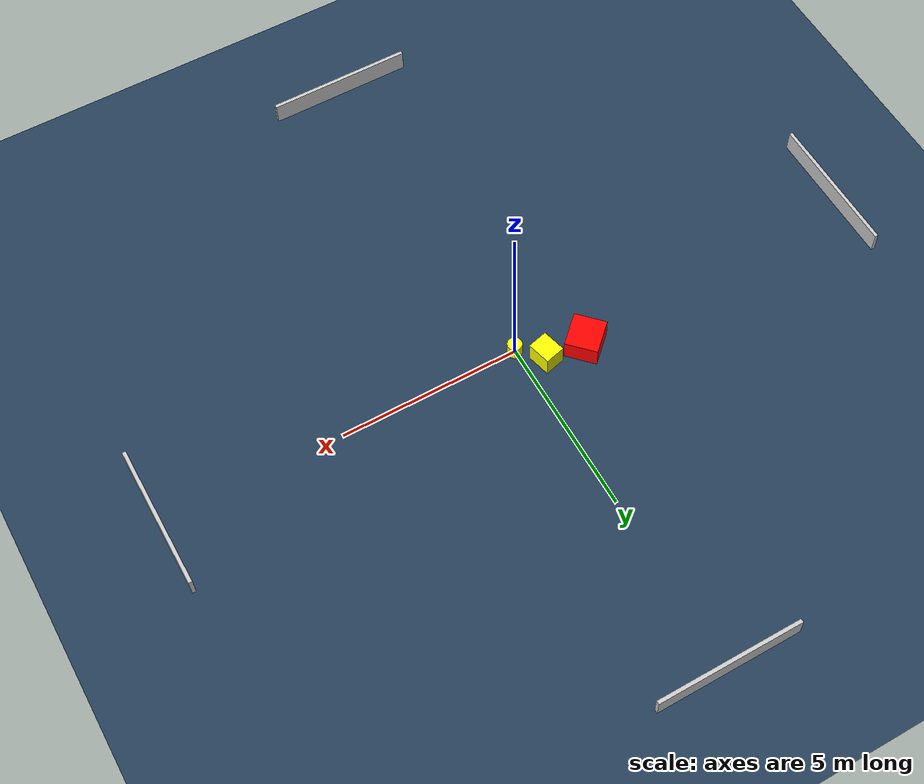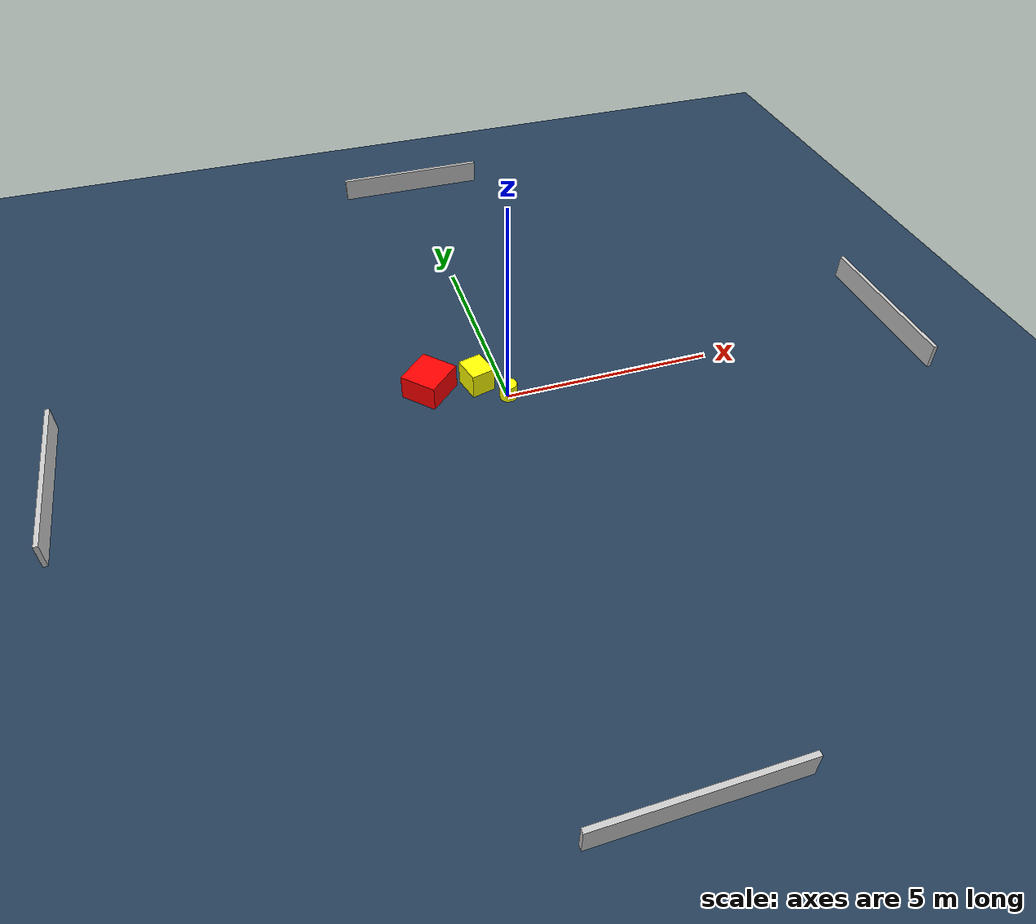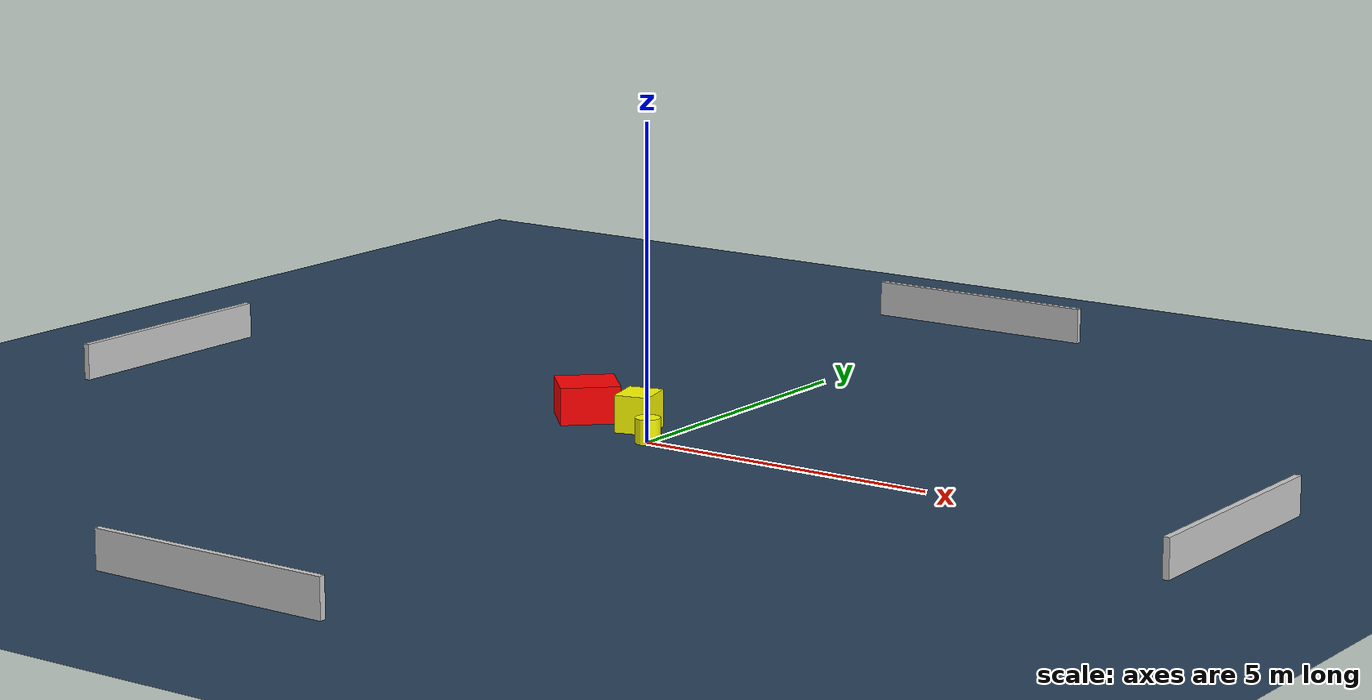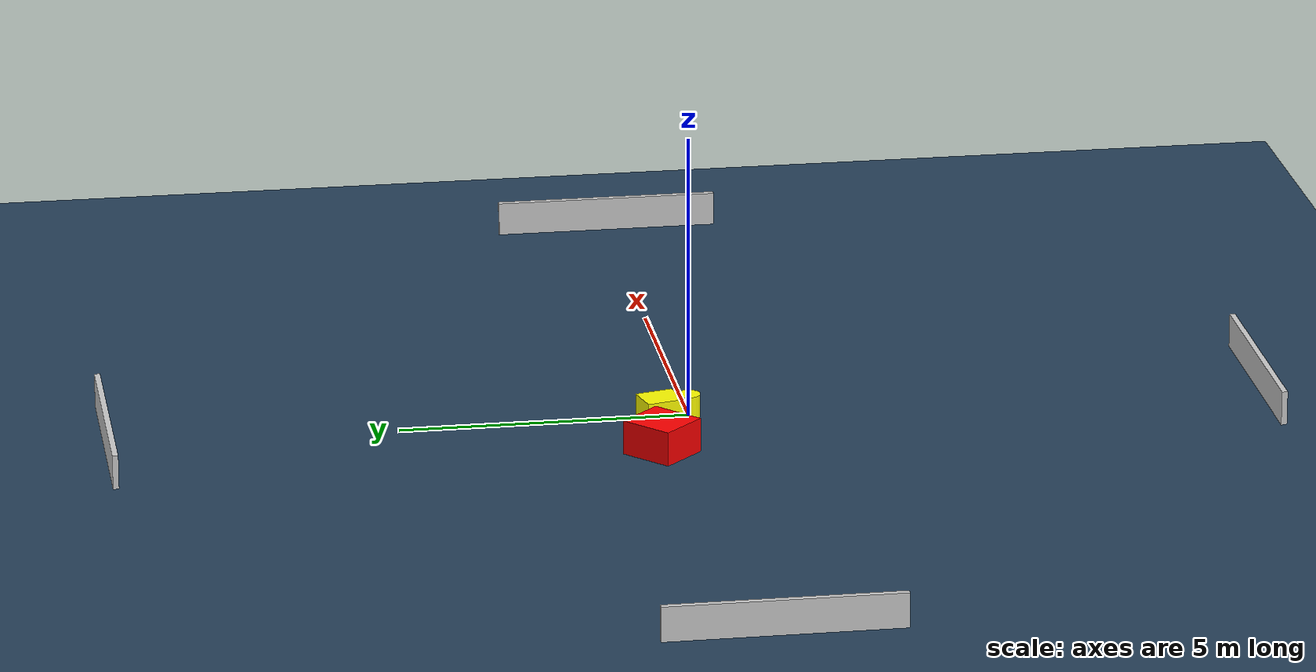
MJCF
<?xml version="1.0" ?>
<mujoco model="generated_environment">
  <option timestep="0.01" integrator="RK4" cone="elliptic"/>
  <default>
    <geom density="1"/>
  </default>
  <asset>
    <texture builtin="gradient" height="3072" name="skybox" rgb1="0.3 0.5 0.7" rgb2="0 0 0" type="skybox" width="512"/>
    <texture builtin="checker" height="300" name="groundplane" rgb1="0.2 0.3 0.4" rgb2="0.1 0.2 0.3" type="2d" width="300"/>
    <material name="groundplane" reflectance="0.2" texrepeat="5 5" texture="groundplane"/>
  </asset>
  <worldbody>
    <light dir="0 0 -1" directional="true" pos="0 0 1.5"/>
    <geom condim="3" friction="0.5 0.005 0.001" material="groundplane" name="floor" pos="0 0 0" size="0 0 0.05" type="plane"/>
    <body name="walls">
      <geom name="wall_1" condim="4" pos="-10.0 0.0 0.3" rgba="0.800000011920929 0.800000011920929 0.800000011920929 1.0" size="0.05 2.0 0.3" type="box"/>
      <geom name="wall_2" condim="4" pos="10.0 0.0 0.3" rgba="0.800000011920929 0.800000011920929 0.800000011920929 1.0" size="0.05 2.0 0.3" type="box"/>
      <geom name="wall_3" condim="4" pos="0.0 -10.0 0.3" rgba="0.800000011920929 0.800000011920929 0.800000011920929 1.0" size="2.0 0.05 0.3" type="box"/>
      <geom name="wall_4" condim="4" pos="0.0 10.0 0.3" rgba="0.800000011920929 0.800000011920929 0.800000011920929 1.0" size="2.0 0.05 0.3" type="box"/>
    </body>
    <body name="robot">
      <joint name="joint_x" type="slide" pos="0 0 0" axis="1 0 0"/>
      <joint name="joint_y" type="slide" pos="0 0 0" axis="0 1 0"/>
      <geom name="robot" type="cylinder" pos="0.0 0.0 0.2" size="0.2 0.2 0.0" mass="5.0" friction="1.0 0.005 0.0001" condim="4" rgba="1.0 1.0 0.0 1.0"/>
    </body>
    <body name="obstacle_1_movable">
      <geom name="obstacle_1_movable" condim="4" pos="-0.5933621129037849 0.5921880091497119 0.3" euler="0 0 14.229098167736872" friction="0.0 0.005 0.001" rgba="1.0 1.0 0.0 1.0" size="0.28270924614501214 0.3307932493575646 0.3" type="box" mass="0.1"/>
      <joint type="free"/>
    </body>
    <body name="obstacle_2_static">
      <geom name="obstacle_2_static" condim="4" pos="-1.698331494959314 0.7240973918895902 0.3" euler="0 0 43.55943009132291" friction="0.0 0.005 0.001" rgba="1.0 0.0 0.0 1.0" size="0.4807845398670353 0.4471925888894113 0.3" type="box"/>
    </body>
  </worldbody>
  <actuator>
    <motor name="actuator_x" joint="joint_x" gear="1" ctrlrange="-1 1"/>
    <motor name="actuator_y" joint="joint_y" gear="1" ctrlrange="-1 1"/>
  </actuator>
</mujoco>
